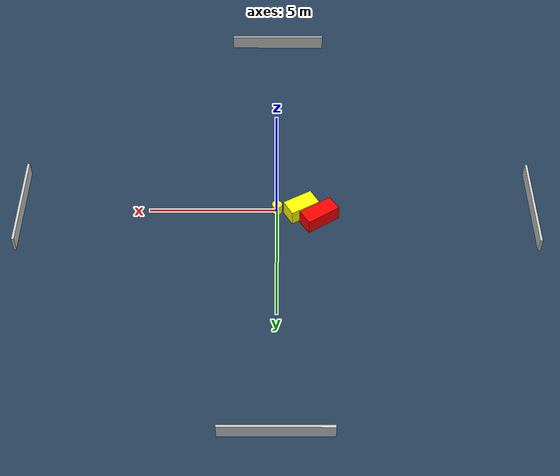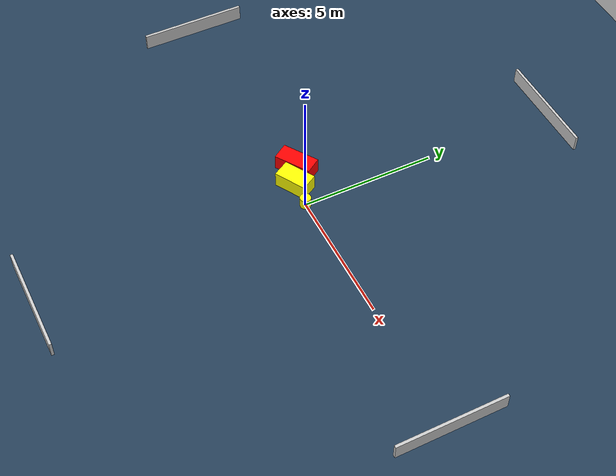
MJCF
<?xml version="1.0" ?>
<mujoco model="generated_environment">
  <option timestep="0.01" integrator="RK4" cone="elliptic"/>
  <default>
    <geom density="1"/>
  </default>
  <asset>
    <texture builtin="gradient" height="3072" name="skybox" rgb1="0.3 0.5 0.7" rgb2="0 0 0" type="skybox" width="512"/>
    <texture builtin="checker" height="300" name="groundplane" rgb1="0.2 0.3 0.4" rgb2="0.1 0.2 0.3" type="2d" width="300"/>
    <material name="groundplane" reflectance="0.2" texrepeat="5 5" texture="groundplane"/>
  </asset>
  <worldbody>
    <light dir="0 0 -1" directional="true" pos="0 0 1.5"/>
    <geom condim="3" friction="0.5 0.005 0.001" material="groundplane" name="floor" pos="0 0 0" size="0 0 0.05" type="plane"/>
    <body name="walls">
      <geom name="wall_1" condim="4" pos="-10.0 0.0 0.3" rgba="0.800000011920929 0.800000011920929 0.800000011920929 1.0" size="0.05 2.0 0.3" type="box"/>
      <geom name="wall_2" condim="4" pos="10.0 0.0 0.3" rgba="0.800000011920929 0.800000011920929 0.800000011920929 1.0" size="0.05 2.0 0.3" type="box"/>
      <geom name="wall_3" condim="4" pos="0.0 -10.0 0.3" rgba="0.800000011920929 0.800000011920929 0.800000011920929 1.0" size="2.0 0.05 0.3" type="box"/>
      <geom name="wall_4" condim="4" pos="0.0 10.0 0.3" rgba="0.800000011920929 0.800000011920929 0.800000011920929 1.0" size="2.0 0.05 0.3" type="box"/>
    </body>
    <body name="robot">
      <joint name="joint_x" type="slide" pos="0 0 0" axis="1 0 0"/>
      <joint name="joint_y" type="slide" pos="0 0 0" axis="0 1 0"/>
      <geom name="robot" type="cylinder" pos="0.0 0.0 0.2" size="0.2 0.2 0.0" mass="5.0" friction="1.0 0.005 0.0001" condim="4" rgba="1.0 1.0 0.0 1.0"/>
    </body>
    <body name="obstacle_1_movable">
      <geom name="obstacle_1_movable" condim="4" pos="-0.9503275311027902 0.060182274273690654 0.3" euler="0 0 29.77531328399696" friction="0.0 0.005 0.001" rgba="1.0 1.0 0.0 1.0" size="0.6123795241366533 0.33926184520124736 0.3" type="box" mass="0.1"/>
      <joint type="free"/>
    </body>
    <body name="obstacle_2_static">
      <geom name="obstacle_2_static" condim="4" pos="-1.6456348579927669 0.46076786564089683 0.3" euler="0 0 303.09743315253354" friction="0.0 0.005 0.001" rgba="1.0 0.0 0.0 1.0" size="0.3259014177302567 0.6997307673131656 0.3" type="box"/>
    </body>
  </worldbody>
  <actuator>
    <motor name="actuator_x" joint="joint_x" gear="1" ctrlrange="-1 1"/>
    <motor name="actuator_y" joint="joint_y" gear="1" ctrlrange="-1 1"/>
  </actuator>
</mujoco>
